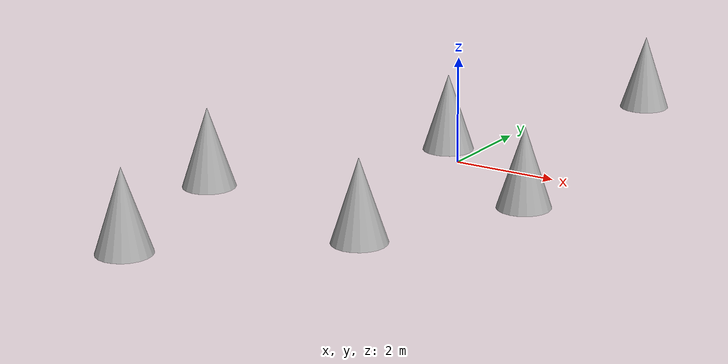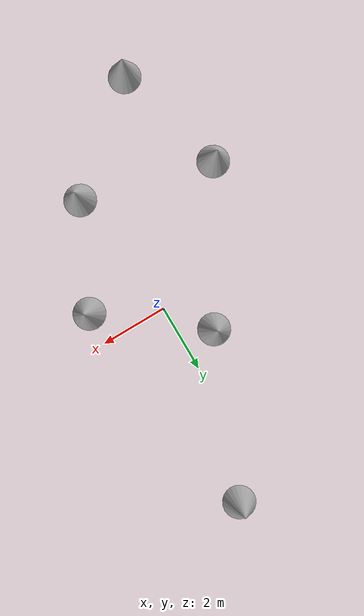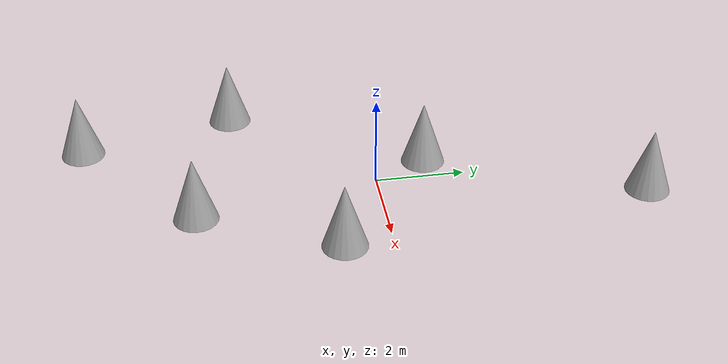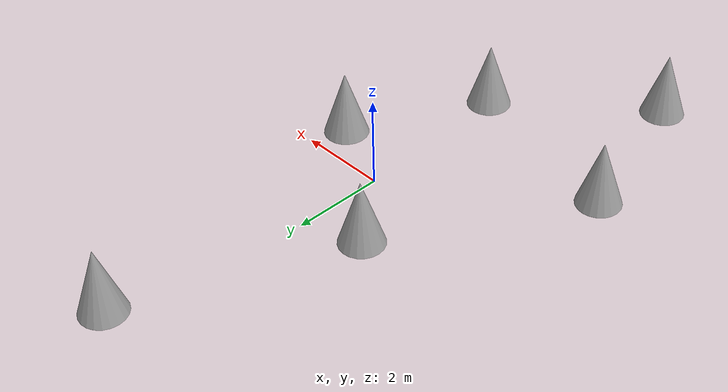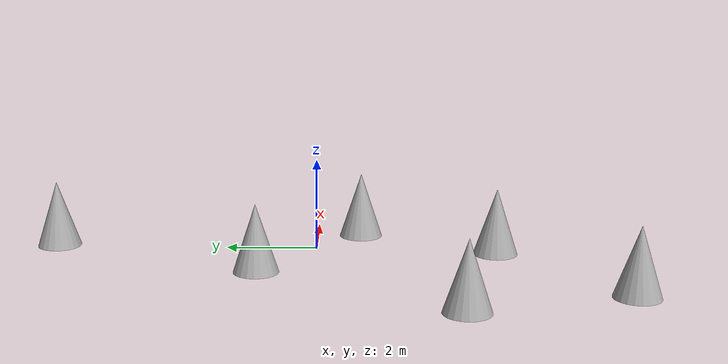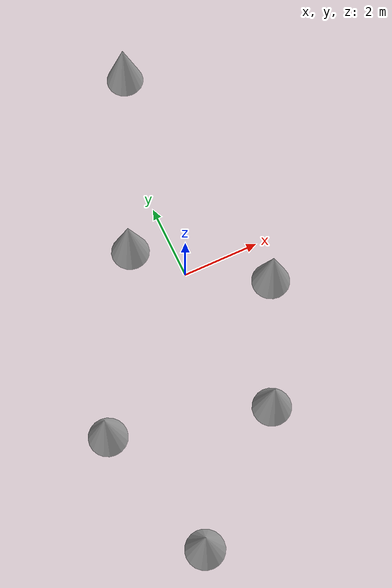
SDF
<sdf version='1.10'>
  <world name='void'>
    <physics name='1ms' type='ignored'>
      <max_step_size>0.001</max_step_size>
      <real_time_factor>1</real_time_factor>
      <real_time_update_rate>1000</real_time_update_rate>
    </physics>
    <plugin name='gz::sim::systems::Physics' filename='gz-sim-physics-system'/>
    <plugin name='gz::sim::systems::UserCommands' filename='gz-sim-user-commands-system'/>
    <plugin name='gz::sim::systems::SceneBroadcaster' filename='gz-sim-scene-broadcaster-system'/>
    <plugin name='gz::sim::systems::Contact' filename='gz-sim-contact-system'/>
    <gravity>0 0 -9.8000000000000007</gravity>
    <magnetic_field>5.5644999999999998e-06 2.2875799999999999e-05 -4.2388400000000002e-05</magnetic_field>
    <atmosphere type='adiabatic'/>
    <scene>
      <ambient>0.400000006 0.400000006 0.400000006 1</ambient>
      <background>0.699999988 0.699999988 0.699999988 1</background>
      <shadows>true</shadows>
    </scene>
    <model name='ground_plane'>
      <static>true</static>
      <link name='link'>
        <collision name='collision'>
          <geometry>
            <plane>
              <normal>0 0 1</normal>
              <size>100 100</size>
            </plane>
          </geometry>
          <surface>
            <friction>
              <ode>
                <mu>100</mu>
                <mu2>50</mu2>
              </ode>
            </friction>
            <bounce/>
            <contact/>
          </surface>
        </collision>
        <pose>0 0 0 0 0 0</pose>
        <inertial>
          <pose>0 0 0 0 0 0</pose>
          <mass>1</mass>
          <inertia>
            <ixx>1</ixx>
            <ixy>0</ixy>
            <ixz>0</ixz>
            <iyy>1</iyy>
            <iyz>0</iyz>
            <izz>1</izz>
          </inertia>
        </inertial>
        <enable_wind>false</enable_wind>
      </link>
      <pose>0 0 0 0 0 0</pose>
      <self_collide>false</self_collide>
    </model>
    <model name='cone'>
      <pose>-0.98994272289056306 1.2795564150619987 0.49999999993296756 5.2551375645788325e-17 -7.7132841038021451e-10 2.5069439130256327e-23</pose>
      <link name='cone_link'>
        <inertial>
          <inertia>
            <ixx>0.074999999999999997</ixx>
            <ixy>0</ixy>
            <ixz>0</ixz>
            <iyy>0.074999999999999997</iyy>
            <iyz>0</iyz>
            <izz>0.074999999999999997</izz>
          </inertia>
          <mass>1</mass>
          <pose>0 0 0 0 0 0</pose>
        </inertial>
        <collision name='cone_collision'>
          <geometry>
            <cone>
              <radius>0.5</radius>
              <length>1.5</length>
            </cone>
          </geometry>
          <surface>
            <friction>
              <ode/>
            </friction>
            <bounce/>
            <contact/>
          </surface>
        </collision>
        <visual name='cone_visual'>
          <geometry>
            <cone>
              <radius>0.5</radius>
              <length>1.5</length>
            </cone>
          </geometry>
          <material>
            <ambient>0.300000012 0.300000012 0.300000012 1</ambient>
            <diffuse>0.699999988 0.699999988 0.699999988 1</diffuse>
            <specular>1 1 1 1</specular>
          </material>
        </visual>
        <pose>0 0 0 0 0 0</pose>
        <enable_wind>false</enable_wind>
      </link>
      <static>false</static>
      <self_collide>false</self_collide>
    </model>
    <model name='cone_1'>
      <pose>-3.5038906627918109 -3.0289293106892812 0.49999999993296756 5.2541471503228405e-17 -7.7132841033694056e-10 -2.8937183272912105e-22</pose>
      <link name='cone_link'>
        <inertial>
          <inertia>
            <ixx>0.074999999999999997</ixx>
            <ixy>0</ixy>
            <ixz>0</ixz>
            <iyy>0.074999999999999997</iyy>
            <iyz>0</iyz>
            <izz>0.074999999999999997</izz>
          </inertia>
          <mass>1</mass>
          <pose>0 0 0 0 0 0</pose>
        </inertial>
        <collision name='cone_collision'>
          <geometry>
            <cone>
              <radius>0.5</radius>
              <length>1.5</length>
            </cone>
          </geometry>
          <surface>
            <friction>
              <ode/>
            </friction>
            <bounce/>
            <contact/>
          </surface>
        </collision>
        <visual name='cone_visual'>
          <geometry>
            <cone>
              <radius>0.5</radius>
              <length>1.5</length>
            </cone>
          </geometry>
          <material>
            <ambient>0.300000012 0.300000012 0.300000012 1</ambient>
            <diffuse>0.699999988 0.699999988 0.699999988 1</diffuse>
            <specular>1 1 1 1</specular>
          </material>
        </visual>
        <pose>0 0 0 0 0 0</pose>
        <enable_wind>false</enable_wind>
      </link>
      <static>false</static>
      <self_collide>false</self_collide>
    </model>
    <model name='cone_0'>
      <pose>-2.5102300610677499 -6.5355020950132827 0.49999999993296756 5.2544931075677214e-17 -7.7132841038480847e-10 -7.6328321314384305e-23</pose>
      <link name='cone_link'>
        <inertial>
          <inertia>
            <ixx>0.074999999999999997</ixx>
            <ixy>0</ixy>
            <ixz>0</ixz>
            <iyy>0.074999999999999997</iyy>
            <iyz>0</iyz>
            <izz>0.074999999999999997</izz>
          </inertia>
          <mass>1</mass>
          <pose>0 0 0 0 0 0</pose>
        </inertial>
        <collision name='cone_collision'>
          <geometry>
            <cone>
              <radius>0.5</radius>
              <length>1.5</length>
            </cone>
          </geometry>
          <surface>
            <friction>
              <ode/>
            </friction>
            <bounce/>
            <contact/>
          </surface>
        </collision>
        <visual name='cone_visual'>
          <geometry>
            <cone>
              <radius>0.5</radius>
              <length>1.5</length>
            </cone>
          </geometry>
          <material>
            <ambient>0.300000012 0.300000012 0.300000012 1</ambient>
            <diffuse>0.699999988 0.699999988 0.699999988 1</diffuse>
            <specular>1 1 1 1</specular>
          </material>
        </visual>
        <pose>0 0 0 0 0 0</pose>
        <enable_wind>false</enable_wind>
      </link>
      <static>false</static>
      <self_collide>false</self_collide>
    </model>
    <model name='cone_3'>
      <pose>0.49318236415255962 -4.0332992874191671 0.49999999993296756 5.2541471503228405e-17 -7.7132841033694056e-10 -2.8937183272912105e-22</pose>
      <link name='cone_link'>
        <inertial>
          <inertia>
            <ixx>0.074999999999999997</ixx>
            <ixy>0</ixy>
            <ixz>0</ixz>
            <iyy>0.074999999999999997</iyy>
            <iyz>0</iyz>
            <izz>0.074999999999999997</izz>
          </inertia>
          <mass>1</mass>
          <pose>0 0 0 0 0 0</pose>
        </inertial>
        <collision name='cone_collision'>
          <geometry>
            <cone>
              <radius>0.5</radius>
              <length>1.5</length>
            </cone>
          </geometry>
          <surface>
            <friction>
              <ode/>
            </friction>
            <bounce/>
            <contact/>
          </surface>
        </collision>
        <visual name='cone_visual'>
          <geometry>
            <cone>
              <radius>0.5</radius>
              <length>1.5</length>
            </cone>
          </geometry>
          <material>
            <ambient>0.300000012 0.300000012 0.300000012 1</ambient>
            <diffuse>0.699999988 0.699999988 0.699999988 1</diffuse>
            <specular>1 1 1 1</specular>
          </material>
        </visual>
        <pose>0 0 0 0 0 0</pose>
        <enable_wind>false</enable_wind>
      </link>
      <static>false</static>
      <self_collide>false</self_collide>
    </model>
    <model name='cone_2'>
      <pose>0.95801703630296187 6.0282924401872835 0.49999999993296756 5.2541471503228405e-17 -7.7132841033694056e-10 -2.8937183272912105e-22</pose>
      <link name='cone_link'>
        <inertial>
          <inertia>
            <ixx>0.074999999999999997</ixx>
            <ixy>0</ixy>
            <ixz>0</ixz>
            <iyy>0.074999999999999997</iyy>
            <iyz>0</iyz>
            <izz>0.074999999999999997</izz>
          </inertia>
          <mass>1</mass>
          <pose>0 0 0 0 0 0</pose>
        </inertial>
        <collision name='cone_collision'>
          <geometry>
            <cone>
              <radius>0.5</radius>
              <length>1.5</length>
            </cone>
          </geometry>
          <surface>
            <friction>
              <ode/>
            </friction>
            <bounce/>
            <contact/>
          </surface>
        </collision>
        <visual name='cone_visual'>
          <geometry>
            <cone>
              <radius>0.5</radius>
              <length>1.5</length>
            </cone>
          </geometry>
          <material>
            <ambient>0.300000012 0.300000012 0.300000012 1</ambient>
            <diffuse>0.699999988 0.699999988 0.699999988 1</diffuse>
            <specular>1 1 1 1</specular>
          </material>
        </visual>
        <pose>0 0 0 0 0 0</pose>
        <enable_wind>false</enable_wind>
      </link>
      <static>false</static>
      <self_collide>false</self_collide>
    </model>
    <model name='cone_4'>
      <pose>1.9588179408532 -0.98967348088146401 0.49999999993296756 5.2541471503228405e-17 -7.7132841033694056e-10 -2.8937183272912105e-22</pose>
      <link name='cone_link'>
        <inertial>
          <inertia>
            <ixx>0.074999999999999997</ixx>
            <ixy>0</ixy>
            <ixz>0</ixz>
            <iyy>0.074999999999999997</iyy>
            <iyz>0</iyz>
            <izz>0.074999999999999997</izz>
          </inertia>
          <mass>1</mass>
          <pose>0 0 0 0 0 0</pose>
        </inertial>
        <collision name='cone_collision'>
          <geometry>
            <cone>
              <radius>0.5</radius>
              <length>1.5</length>
            </cone>
          </geometry>
          <surface>
            <friction>
              <ode/>
            </friction>
            <bounce/>
            <contact/>
          </surface>
        </collision>
        <visual name='cone_visual'>
          <geometry>
            <cone>
              <radius>0.5</radius>
              <length>1.5</length>
            </cone>
          </geometry>
          <material>
            <ambient>0.300000012 0.300000012 0.300000012 1</ambient>
            <diffuse>0.699999988 0.699999988 0.699999988 1</diffuse>
            <specular>1 1 1 1</specular>
          </material>
        </visual>
        <pose>0 0 0 0 0 0</pose>
        <enable_wind>false</enable_wind>
      </link>
      <static>false</static>
      <self_collide>false</self_collide>
    </model>
    <light name='sun' type='directional'>
      <pose>0 0 10 0 0 0</pose>
      <cast_shadows>true</cast_shadows>
      <intensity>1</intensity>
      <direction>-0.5 0.10000000000000001 -0.90000000000000002</direction>
      <diffuse>0.800000012 0.800000012 0.800000012 1</diffuse>
      <specular>0.200000003 0.200000003 0.200000003 1</specular>
      <attenuation>
        <range>1000</range>
        <linear>0.01</linear>
        <constant>0.90000000000000002</constant>
        <quadratic>0.001</quadratic>
      </attenuation>
      <spot>
        <inner_angle>0</inner_angle>
        <outer_angle>0</outer_angle>
        <falloff>0</falloff>
      </spot>
    </light>
  </world>
</sdf>
